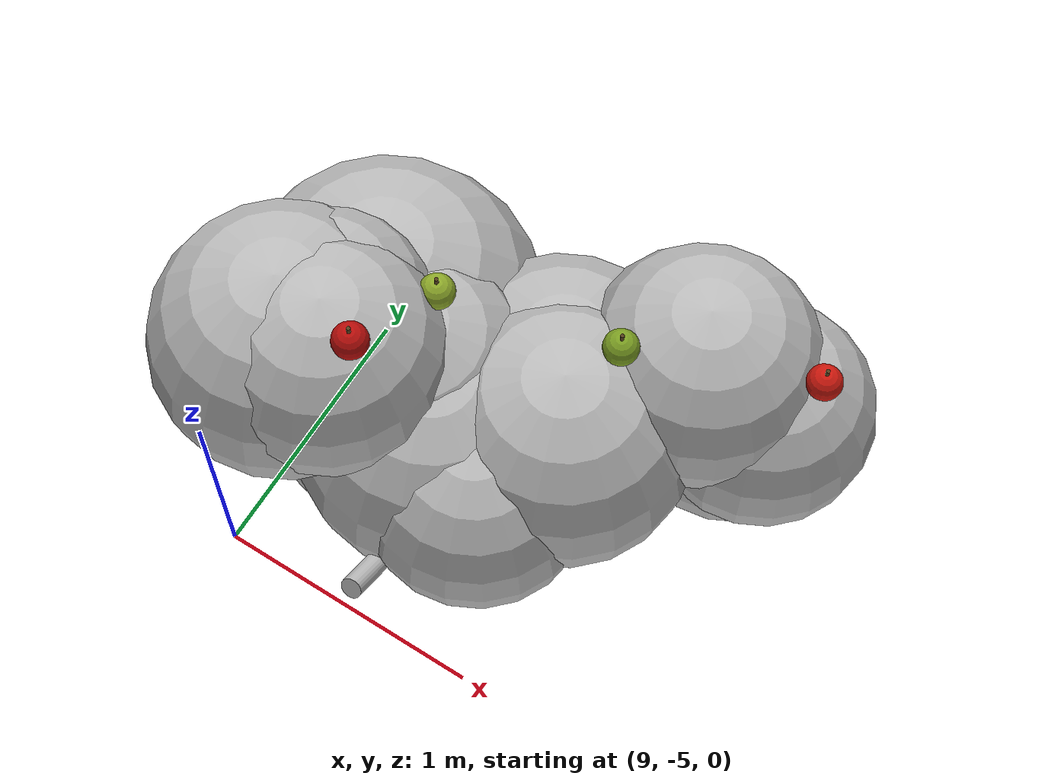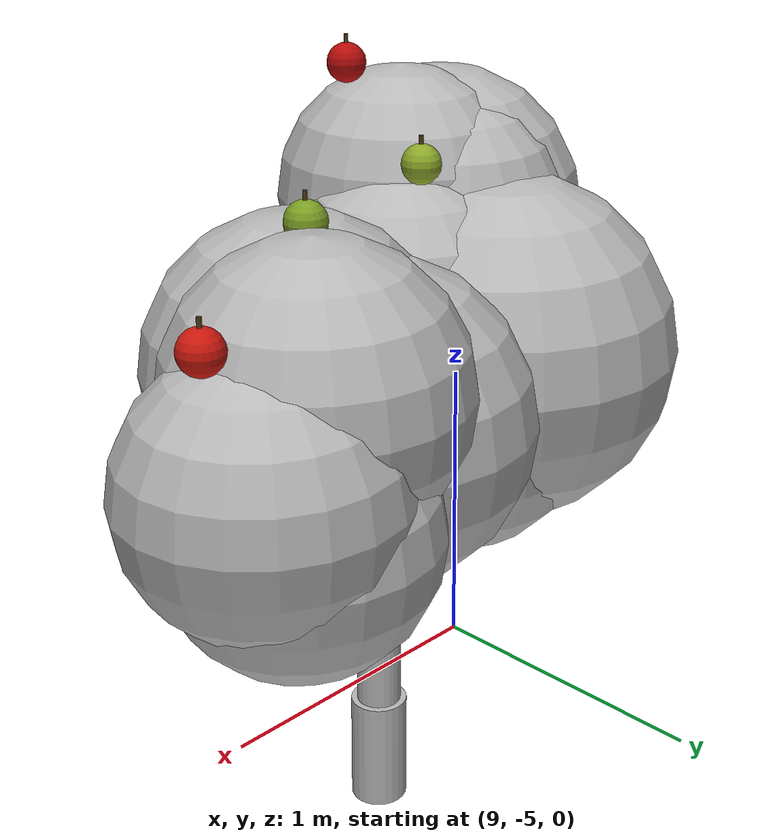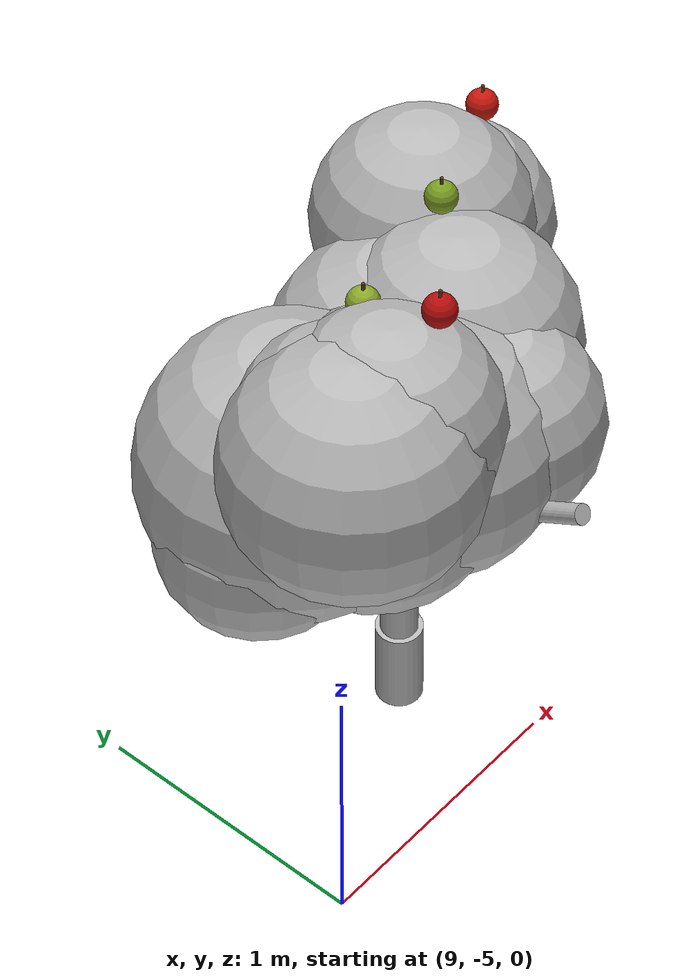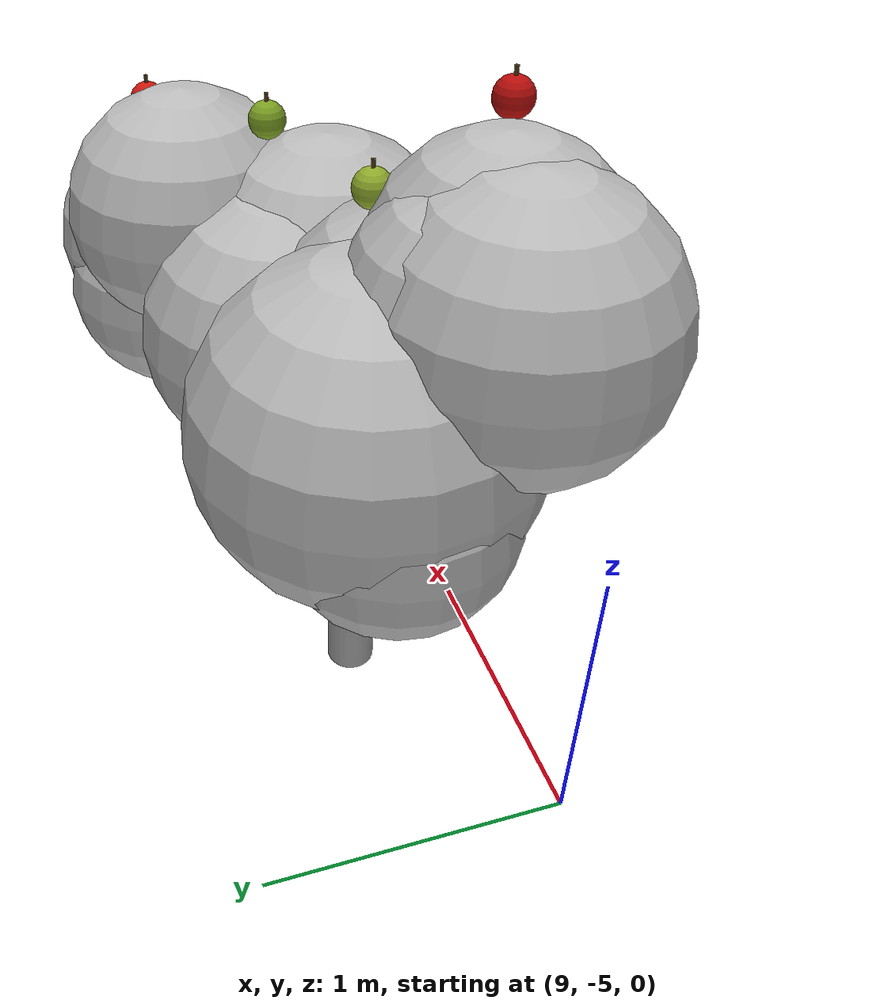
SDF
<sdf version="1.6">
 <world name="default">
  <model name="tree_r1_t12">
   <static>true</static>
   <link name="tree_r1_t12_trunk0">
    <pose>9.8274 -4.5424 0.1579 0.0046 -0.0202 0</pose>
    <collision name="tree_r1_t12_trunk0_c">
     <geometry><cylinder><radius>0.0827</radius><length>0.3348</length></cylinder></geometry>
    </collision>
    <visual name="tree_r1_t12_trunk0_v">
     <geometry><cylinder><radius>0.0827</radius><length>0.3348</length></cylinder></geometry>
     <material>
      <script>
       <uri>model://orchard/materials/scripts</uri>
       <uri>model://orchard/materials/textures</uri>
       <name>Orchard/Bark</name>
      </script>
     </material>
    </visual>
   </link>
   <link name="tree_r1_t12_trunk1">
    <pose>9.8210 -4.5438 0.4738 0.0046 -0.0202 0</pose>
    <visual name="tree_r1_t12_trunk1_v">
     <geometry><cylinder><radius>0.0645</radius><length>0.3348</length></cylinder></geometry>
     <material>
      <script>
       <uri>model://orchard/materials/scripts</uri>
       <uri>model://orchard/materials/textures</uri>
       <name>Orchard/Bark</name>
      </script>
     </material>
    </visual>
   </link>
   <link name="tree_r1_t12_trunk2">
    <pose>9.8146 -4.5453 0.7896 0.0046 -0.0202 0</pose>
    <visual name="tree_r1_t12_trunk2_v">
     <geometry><cylinder><radius>0.0463</radius><length>0.3348</length></cylinder></geometry>
     <material>
      <script>
       <uri>model://orchard/materials/scripts</uri>
       <uri>model://orchard/materials/textures</uri>
       <name>Orchard/Bark</name>
      </script>
     </material>
    </visual>
   </link>
   <link name="tree_r1_t12_br0">
    <pose>10.1173 -4.5714 1.0855 0.0000 1.1484 -0.0828</pose>
    <visual name="tree_r1_t12_br0_v">
     <geometry><cylinder><radius>0.0305</radius><length>0.6729</length></cylinder></geometry>
     <material>
      <script>
       <uri>model://orchard/materials/scripts</uri>
       <uri>model://orchard/materials/textures</uri>
       <name>Orchard/Bark</name>
      </script>
     </material>
    </visual>
   </link>
   <link name="tree_r1_t12_br1">
    <pose>10.0523 -4.3047 1.1083 0.0000 1.1303 0.7862</pose>
    <visual name="tree_r1_t12_br1_v">
     <geometry><cylinder><radius>0.0281</radius><length>0.7539</length></cylinder></geometry>
     <material>
      <script>
       <uri>model://orchard/materials/scripts</uri>
       <uri>model://orchard/materials/textures</uri>
       <name>Orchard/Bark</name>
      </script>
     </material>
    </visual>
   </link>
   <link name="tree_r1_t12_br2">
    <pose>9.7066 -4.3554 1.2426 0.0000 0.6353 2.0738</pose>
    <visual name="tree_r1_t12_br2_v">
     <geometry><cylinder><radius>0.0327</radius><length>0.7332</length></cylinder></geometry>
     <material>
      <script>
       <uri>model://orchard/materials/scripts</uri>
       <uri>model://orchard/materials/textures</uri>
       <name>Orchard/Bark</name>
      </script>
     </material>
    </visual>
   </link>
   <link name="tree_r1_t12_br3">
    <pose>9.4971 -4.4554 1.1097 0.0000 1.1106 2.8610</pose>
    <visual name="tree_r1_t12_br3_v">
     <geometry><cylinder><radius>0.0328</radius><length>0.7301</length></cylinder></geometry>
     <material>
      <script>
       <uri>model://orchard/materials/scripts</uri>
       <uri>model://orchard/materials/textures</uri>
       <name>Orchard/Bark</name>
      </script>
     </material>
    </visual>
   </link>
   <link name="tree_r1_t12_br4">
    <pose>9.5818 -4.7198 1.2055 0.0000 0.8404 3.7895</pose>
    <visual name="tree_r1_t12_br4_v">
     <geometry><cylinder><radius>0.0333</radius><length>0.7733</length></cylinder></geometry>
     <material>
      <script>
       <uri>model://orchard/materials/scripts</uri>
       <uri>model://orchard/materials/textures</uri>
       <name>Orchard/Bark</name>
      </script>
     </material>
    </visual>
   </link>
   <link name="tree_r1_t12_br5">
    <pose>9.8123 -4.9082 1.1655 0.0000 1.0291 4.7149</pose>
    <visual name="tree_r1_t12_br5_v">
     <geometry><cylinder><radius>0.0343</radius><length>0.8455</length></cylinder></geometry>
     <material>
      <script>
       <uri>model://orchard/materials/scripts</uri>
       <uri>model://orchard/materials/textures</uri>
       <name>Orchard/Bark</name>
      </script>
     </material>
    </visual>
   </link>
   <link name="tree_r1_t12_br6">
    <pose>9.9029 -4.7692 1.1051 0.0000 0.9923 5.1011</pose>
    <visual name="tree_r1_t12_br6_v">
     <geometry><cylinder><radius>0.0294</radius><length>0.5763</length></cylinder></geometry>
     <material>
      <script>
       <uri>model://orchard/materials/scripts</uri>
       <uri>model://orchard/materials/textures</uri>
       <name>Orchard/Bark</name>
      </script>
     </material>
    </visual>
   </link>
   <link name="tree_r1_t12_fol0">
    <pose>9.2286 -4.4689 1.2207 0 0 0</pose>
    <visual name="tree_r1_t12_fol0_v">
     <geometry><sphere><radius>0.3402</radius></sphere></geometry>
     <material>
      <script>
       <uri>model://orchard/materials/scripts</uri>
       <uri>model://orchard/materials/textures</uri>
       <name>Orchard/Foliage3</name>
      </script>
     </material>
    </visual>
   </link>
   <link name="tree_r1_t12_fol1">
    <pose>9.4020 -4.4469 1.3698 0 0 0</pose>
    <visual name="tree_r1_t12_fol1_v">
     <geometry><sphere><radius>0.4993</radius></sphere></geometry>
     <material>
      <script>
       <uri>model://orchard/materials/scripts</uri>
       <uri>model://orchard/materials/textures</uri>
       <name>Orchard/Foliage2</name>
      </script>
     </material>
    </visual>
   </link>
   <link name="tree_r1_t12_fol2">
    <pose>10.5578 -4.1335 1.4210 0 0 0</pose>
    <visual name="tree_r1_t12_fol2_v">
     <geometry><sphere><radius>0.3541</radius></sphere></geometry>
     <material>
      <script>
       <uri>model://orchard/materials/scripts</uri>
       <uri>model://orchard/materials/textures</uri>
       <name>Orchard/Foliage2</name>
      </script>
     </material>
    </visual>
   </link>
   <link name="tree_r1_t12_fol3">
    <pose>9.9557 -4.8047 1.3873 0 0 0</pose>
    <visual name="tree_r1_t12_fol3_v">
     <geometry><sphere><radius>0.3625</radius></sphere></geometry>
     <material>
      <script>
       <uri>model://orchard/materials/scripts</uri>
       <uri>model://orchard/materials/textures</uri>
       <name>Orchard/Foliage3</name>
      </script>
     </material>
    </visual>
   </link>
   <link name="tree_r1_t12_fol4">
    <pose>9.7506 -4.7100 1.3838 0 0 0</pose>
    <visual name="tree_r1_t12_fol4_v">
     <geometry><sphere><radius>0.4406</radius></sphere></geometry>
     <material>
      <script>
       <uri>model://orchard/materials/scripts</uri>
       <uri>model://orchard/materials/textures</uri>
       <name>Orchard/Foliage1</name>
      </script>
     </material>
    </visual>
   </link>
   <link name="tree_r1_t12_fol5">
    <pose>9.9969 -4.3815 1.3407 0 0 0</pose>
    <visual name="tree_r1_t12_fol5_v">
     <geometry><sphere><radius>0.4422</radius></sphere></geometry>
     <material>
      <script>
       <uri>model://orchard/materials/scripts</uri>
       <uri>model://orchard/materials/textures</uri>
       <name>Orchard/Foliage1</name>
      </script>
     </material>
    </visual>
   </link>
   <link name="tree_r1_t12_fol6">
    <pose>9.4493 -4.8005 1.7657 0 0 0</pose>
    <visual name="tree_r1_t12_fol6_v">
     <geometry><sphere><radius>0.3608</radius></sphere></geometry>
     <material>
      <script>
       <uri>model://orchard/materials/scripts</uri>
       <uri>model://orchard/materials/textures</uri>
       <name>Orchard/Foliage3</name>
      </script>
     </material>
    </visual>
   </link>
   <link name="tree_r1_t12_fol7">
    <pose>10.0947 -4.5392 1.4792 0 0 0</pose>
    <visual name="tree_r1_t12_fol7_v">
     <geometry><sphere><radius>0.4111</radius></sphere></geometry>
     <material>
      <script>
       <uri>model://orchard/materials/scripts</uri>
       <uri>model://orchard/materials/textures</uri>
       <name>Orchard/Foliage2</name>
      </script>
     </material>
    </visual>
   </link>
   <link name="tree_r1_t12_fol8">
    <pose>9.3679 -4.6914 1.7087 0 0 0</pose>
    <visual name="tree_r1_t12_fol8_v">
     <geometry><sphere><radius>0.3427</radius></sphere></geometry>
     <material>
      <script>
       <uri>model://orchard/materials/scripts</uri>
       <uri>model://orchard/materials/textures</uri>
       <name>Orchard/Foliage1</name>
      </script>
     </material>
    </visual>
   </link>
   <link name="tree_r1_t12_fol9">
    <pose>10.4674 -4.1264 1.2858 0 0 0</pose>
    <visual name="tree_r1_t12_fol9_v">
     <geometry><sphere><radius>0.3447</radius></sphere></geometry>
     <material>
      <script>
       <uri>model://orchard/materials/scripts</uri>
       <uri>model://orchard/materials/textures</uri>
       <name>Orchard/Foliage3</name>
      </script>
     </material>
    </visual>
   </link>
   <link name="tree_r1_t12_fol10">
    <pose>9.5582 -4.4980 1.2214 0 0 0</pose>
    <visual name="tree_r1_t12_fol10_v">
     <geometry><sphere><radius>0.4258</radius></sphere></geometry>
     <material>
      <script>
       <uri>model://orchard/materials/scripts</uri>
       <uri>model://orchard/materials/textures</uri>
       <name>Orchard/Foliage1</name>
      </script>
     </material>
    </visual>
   </link>
   <link name="tree_r1_t12_fol11">
    <pose>10.3573 -4.1743 1.5922 0 0 0</pose>
    <visual name="tree_r1_t12_fol11_v">
     <geometry><sphere><radius>0.3727</radius></sphere></geometry>
     <material>
      <script>
       <uri>model://orchard/materials/scripts</uri>
       <uri>model://orchard/materials/textures</uri>
       <name>Orchard/Foliage3</name>
      </script>
     </material>
    </visual>
   </link>
   <link name="tree_r1_t12_fol12">
    <pose>9.2918 -4.7994 1.6846 0 0 0</pose>
    <visual name="tree_r1_t12_fol12_v">
     <geometry><sphere><radius>0.4203</radius></sphere></geometry>
     <material>
      <script>
       <uri>model://orchard/materials/scripts</uri>
       <uri>model://orchard/materials/textures</uri>
       <name>Orchard/Foliage2</name>
      </script>
     </material>
    </visual>
   </link>
   <link name="tree_r1_t12_fol13">
    <pose>9.6181 -4.6315 1.5029 0 0 0</pose>
    <visual name="tree_r1_t12_fol13_v">
     <geometry><sphere><radius>0.3890</radius></sphere></geometry>
     <material>
      <script>
       <uri>model://orchard/materials/scripts</uri>
       <uri>model://orchard/materials/textures</uri>
       <name>Orchard/Foliage0</name>
      </script>
     </material>
    </visual>
   </link>
   <link name="tree_r1_t12_fol14">
    <pose>9.5692 -4.6390 1.3052 0 0 0</pose>
    <visual name="tree_r1_t12_fol14_v">
     <geometry><sphere><radius>0.4271</radius></sphere></geometry>
     <material>
      <script>
       <uri>model://orchard/materials/scripts</uri>
       <uri>model://orchard/materials/textures</uri>
       <name>Orchard/Foliage0</name>
      </script>
     </material>
    </visual>
   </link>
   <link name="tree_r1_t12_ap0">
    <pose>9.5981 -4.8653 2.1426 0 0 0</pose>
    <visual name="tree_r1_t12_ap0_v">
     <geometry><sphere><radius>0.0550</radius></sphere></geometry>
     <material>
      <ambient>0.288 0.020 0.016 1.00</ambient>
      <diffuse>0.720 0.050 0.040 1.00</diffuse>
      <specular>0.45 0.35 0.32 1</specular>
     </material>
    </visual>
   </link>
   <link name="tree_r1_t12_st0">
    <pose>9.5981 -4.8653 2.1949 0 0 0</pose>
    <visual name="tree_r1_t12_st0_v">
     <geometry><cylinder><radius>0.0060</radius><length>0.0500</length></cylinder></geometry>
     <material><ambient>0.128 0.096 0.040 1.00</ambient><diffuse>0.320 0.240 0.100 1.00</diffuse></material>
    </visual>
   </link>
   <link name="tree_r1_t12_ap1">
    <pose>10.7170 -4.1243 1.8075 0 0 0</pose>
    <visual name="tree_r1_t12_ap1_v">
     <geometry><sphere><radius>0.0550</radius></sphere></geometry>
     <material>
      <ambient>0.320 0.036 0.020 1.00</ambient>
      <diffuse>0.800 0.090 0.050 1.00</diffuse>
      <specular>0.45 0.35 0.32 1</specular>
     </material>
    </visual>
   </link>
   <link name="tree_r1_t12_st1">
    <pose>10.7170 -4.1243 1.8598 0 0 0</pose>
    <visual name="tree_r1_t12_st1_v">
     <geometry><cylinder><radius>0.0060</radius><length>0.0500</length></cylinder></geometry>
     <material><ambient>0.128 0.096 0.040 1.00</ambient><diffuse>0.320 0.240 0.100 1.00</diffuse></material>
    </visual>
   </link>
   <link name="tree_r1_t12_ap2">
    <pose>10.1866 -4.3884 1.9136 0 0 0</pose>
    <visual name="tree_r1_t12_ap2_v">
     <geometry><sphere><radius>0.0550</radius></sphere></geometry>
     <material>
      <ambient>0.192 0.248 0.052 1.00</ambient>
      <diffuse>0.480 0.620 0.130 1.00</diffuse>
      <specular>0.45 0.35 0.32 1</specular>
     </material>
    </visual>
   </link>
   <link name="tree_r1_t12_st2">
    <pose>10.1866 -4.3884 1.9658 0 0 0</pose>
    <visual name="tree_r1_t12_st2_v">
     <geometry><cylinder><radius>0.0060</radius><length>0.0500</length></cylinder></geometry>
     <material><ambient>0.128 0.096 0.040 1.00</ambient><diffuse>0.320 0.240 0.100 1.00</diffuse></material>
    </visual>
   </link>
   <link name="tree_r1_t12_ap3">
    <pose>9.6517 -4.5266 1.9273 0 0 0</pose>
    <visual name="tree_r1_t12_ap3_v">
     <geometry><sphere><radius>0.0550</radius></sphere></geometry>
     <material>
      <ambient>0.220 0.264 0.064 1.00</ambient>
      <diffuse>0.550 0.660 0.160 1.00</diffuse>
      <specular>0.45 0.35 0.32 1</specular>
     </material>
    </visual>
   </link>
   <link name="tree_r1_t12_st3">
    <pose>9.6517 -4.5266 1.9796 0 0 0</pose>
    <visual name="tree_r1_t12_st3_v">
     <geometry><cylinder><radius>0.0060</radius><length>0.0500</length></cylinder></geometry>
     <material><ambient>0.128 0.096 0.040 1.00</ambient><diffuse>0.320 0.240 0.100 1.00</diffuse></material>
    </visual>
   </link>
  </model>
 </world>
</sdf>
